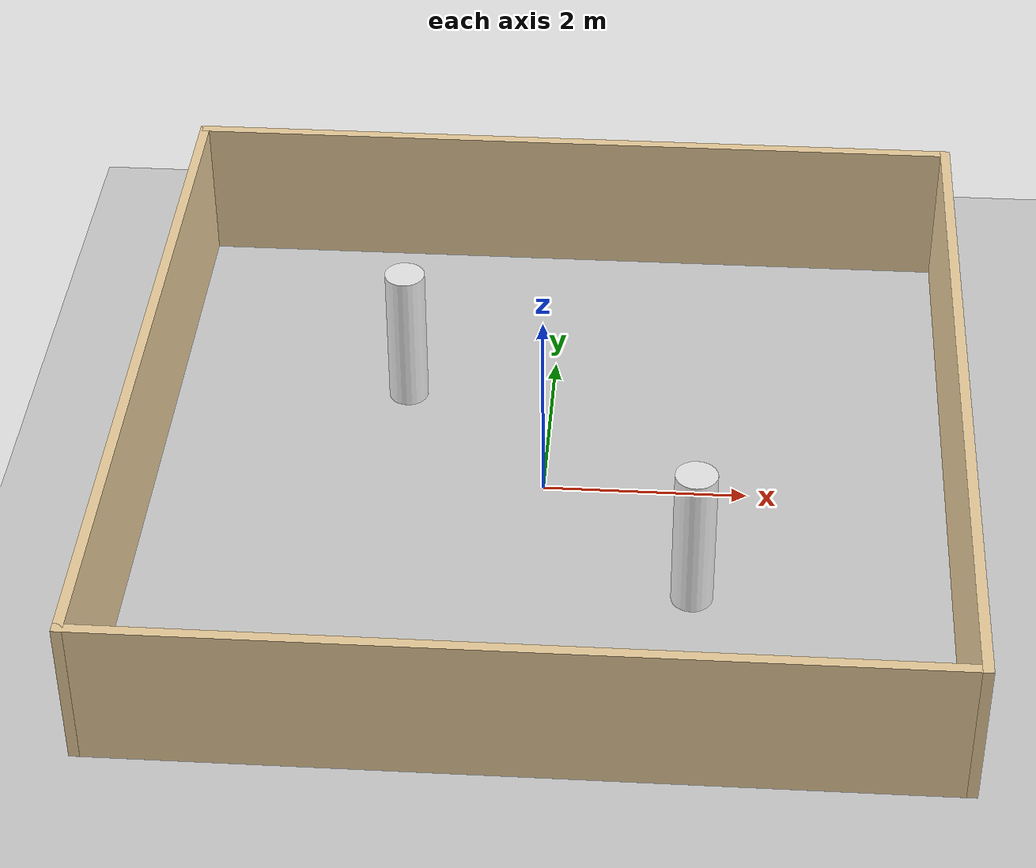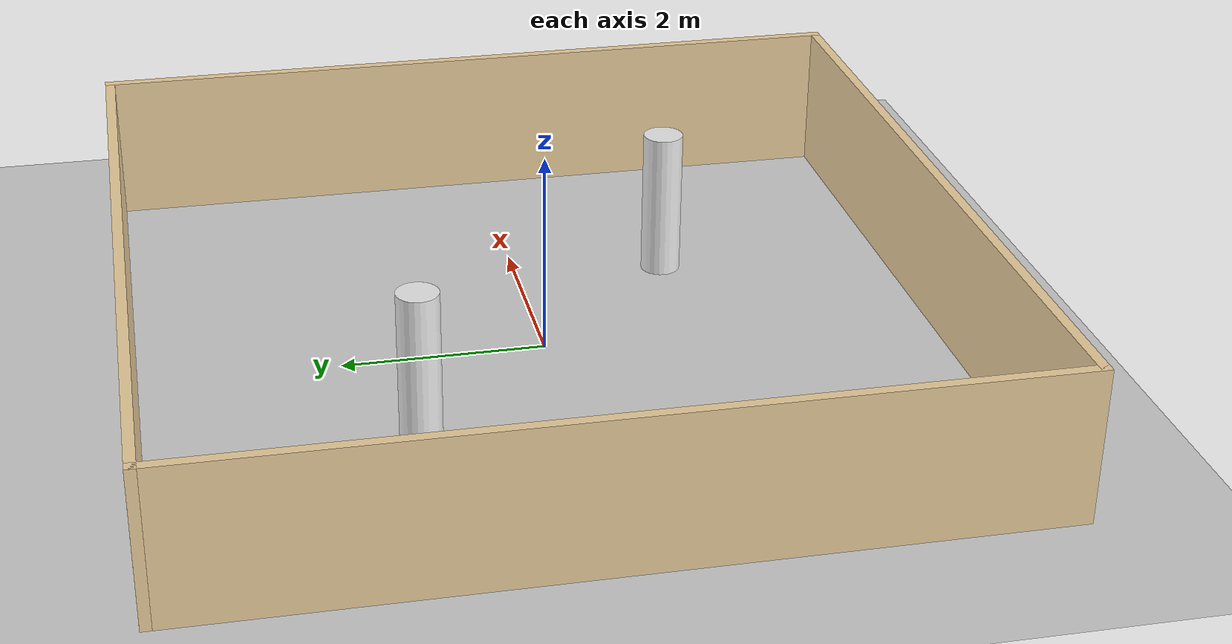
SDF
<?xml version="1.0"?>
<sdf version="1.6">
  <world name="default">
    <!-- A global light source -->
    <include>
      <uri>model://sun</uri>
    </include>
    <!-- A ground plane -->
    <include>
      <uri>model://ground_plane</uri>
    </include>

    <include>
      <uri>model://room</uri>
    </include>

    <include>
      <uri>model://obstacle2</uri>
    </include>

    <gui fullscreen='0'>
        <camera name='user_camera'>
          <!-- Room -->
          <pose> 4.124555 -0.077484 12.532587 -0.000003 1.213798 -3.141232</pose>
          <!-- Building -->
          <view_controller>orbit</view_controller>
        </camera>
    </gui>

    <physics type="ode">
        <real_time_update_rate>1000.0</real_time_update_rate>
        <max_step_size>0.002</max_step_size>
        <real_time_factor>1</real_time_factor>
    </physics>
  </world>
</sdf>

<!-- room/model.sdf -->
<sdf version='1.7'>
  <model name='room'>
    <pose>-2.35191 -1.41681 0 0 -0 0</pose>
    <link name='Wall_0'>
      <collision name='Wall_0_Collision'>
        <geometry>
          <box>
            <size>8 0.1 1.5</size>
          </box>
        </geometry>
        <pose>0 1 0.75 0 -0 0</pose>
      </collision>
      <visual name='Wall_0_Visual'>
        <pose>0 1 0.75 0 -0 0</pose>
        <geometry>
          <box>
            <size>8 0.1 1.5</size>
          </box>
        </geometry>
        <material>
          <script>
            <uri>file://media/materials/scripts/gazebo.material</uri>
            <name>Gazebo/Grey</name>
          </script>
          <ambient>0.921569 0.807843 0.615686 1</ambient>
        </material>
        <meta>
          <layer>0</layer>
        </meta>
      </visual>
      <pose>5.35 1.45074 0 0 -0 -1.57083</pose>
    </link>
    <link name='Wall_2'>
      <collision name='Wall_2_Collision'>
        <geometry>
          <box>
            <size>8 0.1 1.5</size>
          </box>
        </geometry>
        <pose>0 1 0.75 0 -0 0</pose>
      </collision>
      <visual name='Wall_2_Visual'>
        <pose>0 1 0.75 0 -0 0</pose>
        <geometry>
          <box>
            <size>8 0.1 1.5</size>
          </box>
        </geometry>
        <material>
          <script>
            <uri>file://media/materials/scripts/gazebo.material</uri>
            <name>Gazebo/Grey</name>
          </script>
          <ambient>0.921569 0.807843 0.615686 1</ambient>
        </material>
        <meta>
          <layer>0</layer>
        </meta>
      </visual>
      <pose>2.39991 -1.49918 0 0 -0 3.14159</pose>
    </link>
    <link name='Wall_4'>
      <collision name='Wall_4_Collision'>
        <geometry>
          <box>
            <size>8 0.1 1.5</size>
          </box>
        </geometry>
        <pose>0 -1 0.75 0 -0 0</pose>
      </collision>
      <visual name='Wall_4_Visual'>
        <pose>0 -1 0.75 0 -0 0</pose>
        <geometry>
          <box>
            <size>8 0.1 1.5</size>
          </box>
        </geometry>
        <material>
          <script>
            <uri>file://media/materials/scripts/gazebo.material</uri>
            <name>Gazebo/Grey</name>
          </script>
          <ambient>0.921569 0.807843 0.615686 1</ambient>
        </material>
        <meta>
          <layer>0</layer>
        </meta>
      </visual>
      <pose>2.40009 4.40067 0 0 -0 3.14159</pose>
    </link>
    <link name='Wall_6'>
      <collision name='Wall_6_Collision'>
        <geometry>
          <box>
            <size>8 0.1 1.5</size>
          </box>
        </geometry>
        <pose>1.5 -1 0.75 0 -0 0</pose>
      </collision>
      <visual name='Wall_6_Visual'>
        <pose>1.5 -1 0.75 0 -0 0</pose>
        <geometry>
          <box>
            <size>8 0.1 1.5</size>
          </box>
        </geometry>
        <material>
          <script>
            <uri>file://media/materials/scripts/gazebo.material</uri>
            <name>Gazebo/Grey</name>
          </script>
          <ambient>0.921569 0.807843 0.615686 1</ambient>
        </material>
        <meta>
          <layer>0</layer>
        </meta>
      </visual>
      <pose>-0.549999 2.95074 0 0 -0 -1.57086</pose>
    </link>
    <static>1</static>
  </model>
</sdf>

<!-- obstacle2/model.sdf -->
<sdf version='1.7'>
  <model name='obstacle2'>
    <pose>-2.8 -0.8 0.75 0 0 0</pose>
    <link name='link_1'>
      <inertial>
        <mass>100</mass>
        <inertia>
          <ixx>0.145833</ixx>
          <ixy>0</ixy>
          <ixz>0</ixz>
          <iyy>0.145833</iyy>
          <iyz>0</iyz>
          <izz>0.125</izz>
        </inertia>
        <pose>0 0 0 0 -0 0</pose>
      </inertial>
      <pose>4.298 -0.724719 0 0 -0 0</pose>
      <gravity>1</gravity>
      <self_collide>0</self_collide>
      <kinematic>0</kinematic>
      <enable_wind>0</enable_wind>
      <visual name='visual'>
        <pose>0 0 0 0 -0 0</pose>
        <geometry>
          <cylinder>
            <radius>0.2</radius>
            <length>1.5</length>
          </cylinder>
        </geometry>
        <material>
          <lighting>1</lighting>
          <script>
            <uri>file://media/materials/scripts/gazebo.material</uri>
            <name>Gazebo/white</name>
          </script>
          <shader type='pixel'>
            <normal_map>__default__</normal_map>
          </shader>
          <ambient>0.3 0.3 0.3 1</ambient>
          <diffuse>0.7 0.7 0.7 1</diffuse>
          <specular>0.01 0.01 0.01 1</specular>
          <emissive>0 0 0 1</emissive>
        </material>
        <transparency>0</transparency>
        <cast_shadows>1</cast_shadows>
      </visual>
      <collision name='collision'>
        <laser_retro>0</laser_retro>
        <max_contacts>10</max_contacts>
        <pose>0 0 0 0 -0 0</pose>
        <geometry>
          <cylinder>
            <radius>0.2</radius>
            <length>1.5</length>
          </cylinder>
        </geometry>
        <surface>
          <friction>
            <ode>
              <mu>1</mu>
              <mu2>1</mu2>
              <fdir1>0 0 0</fdir1>
              <slip1>0</slip1>
              <slip2>0</slip2>
            </ode>
            <torsional>
              <coefficient>1</coefficient>
              <patch_radius>0</patch_radius>
              <surface_radius>0</surface_radius>
              <use_patch_radius>1</use_patch_radius>
              <ode>
                <slip>0</slip>
              </ode>
            </torsional>
          </friction>
          <bounce>
            <restitution_coefficient>0</restitution_coefficient>
            <threshold>1e+06</threshold>
          </bounce>
          <contact>
            <collide_without_contact>0</collide_without_contact>
            <collide_without_contact_bitmask>1</collide_without_contact_bitmask>
            <collide_bitmask>1</collide_bitmask>
            <ode>
              <soft_cfm>0</soft_cfm>
              <soft_erp>0.2</soft_erp>
              <kp>1e+13</kp>
              <kd>1</kd>
              <max_vel>0.01</max_vel>
              <min_depth>0</min_depth>
            </ode>
            <bullet>
              <split_impulse>1</split_impulse>
              <split_impulse_penetration_threshold>-0.01</split_impulse_penetration_threshold>
              <soft_cfm>0</soft_cfm>
              <soft_erp>0.2</soft_erp>
              <kp>1e+13</kp>
              <kd>1</kd>
            </bullet>
          </contact>
        </surface>
      </collision>
    </link>
    <link name='link_1_clone'>
      <inertial>
        <mass>100</mass>
        <inertia>
          <ixx>0.145833</ixx>
          <ixy>0</ixy>
          <ixz>0</ixz>
          <iyy>0.145833</iyy>
          <iyz>0</iyz>
          <izz>0.125</izz>
        </inertia>
        <pose>0 0 0 0 -0 0</pose>
      </inertial>
      <pose>1.31539 2.23517 0 0 -0 0</pose>
      <gravity>1</gravity>
      <self_collide>0</self_collide>
      <kinematic>0</kinematic>
      <enable_wind>0</enable_wind>
      <visual name='visual'>
        <pose>0 0 0 0 -0 0</pose>
        <geometry>
          <cylinder>
            <radius>0.2</radius>
            <length>1.5</length>
          </cylinder>
        </geometry>
        <material>
          <lighting>1</lighting>
          <script>
            <uri>file://media/materials/scripts/gazebo.material</uri>
            <name>Gazebo/white</name>
          </script>
          <shader type='pixel'>
            <normal_map>__default__</normal_map>
          </shader>
          <ambient>0.3 0.3 0.3 1</ambient>
          <diffuse>0.7 0.7 0.7 1</diffuse>
          <specular>0.01 0.01 0.01 1</specular>
          <emissive>0 0 0 1</emissive>
        </material>
        <transparency>0</transparency>
        <cast_shadows>1</cast_shadows>
      </visual>
      <collision name='collision'>
        <laser_retro>0</laser_retro>
        <max_contacts>10</max_contacts>
        <pose>0 0 0 0 -0 0</pose>
        <geometry>
          <cylinder>
            <radius>0.2</radius>
            <length>1.5</length>
          </cylinder>
        </geometry>
        <surface>
          <friction>
            <ode>
              <mu>1</mu>
              <mu2>1</mu2>
              <fdir1>0 0 0</fdir1>
              <slip1>0</slip1>
              <slip2>0</slip2>
            </ode>
            <torsional>
              <coefficient>1</coefficient>
              <patch_radius>0</patch_radius>
              <surface_radius>0</surface_radius>
              <use_patch_radius>1</use_patch_radius>
              <ode>
                <slip>0</slip>
              </ode>
            </torsional>
          </friction>
          <bounce>
            <restitution_coefficient>0</restitution_coefficient>
            <threshold>1e+06</threshold>
          </bounce>
          <contact>
            <collide_without_contact>0</collide_without_contact>
            <collide_without_contact_bitmask>1</collide_without_contact_bitmask>
            <collide_bitmask>1</collide_bitmask>
            <ode>
              <soft_cfm>0</soft_cfm>
              <soft_erp>0.2</soft_erp>
              <kp>1e+13</kp>
              <kd>1</kd>
              <max_vel>0.01</max_vel>
              <min_depth>0</min_depth>
            </ode>
            <bullet>
              <split_impulse>1</split_impulse>
              <split_impulse_penetration_threshold>-0.01</split_impulse_penetration_threshold>
              <soft_cfm>0</soft_cfm>
              <soft_erp>0.2</soft_erp>
              <kp>1e+13</kp>
              <kd>1</kd>
            </bullet>
          </contact>
        </surface>
      </collision>
    </link>
    <static>1</static>
    <allow_auto_disable>1</allow_auto_disable>
  </model>
</sdf>
